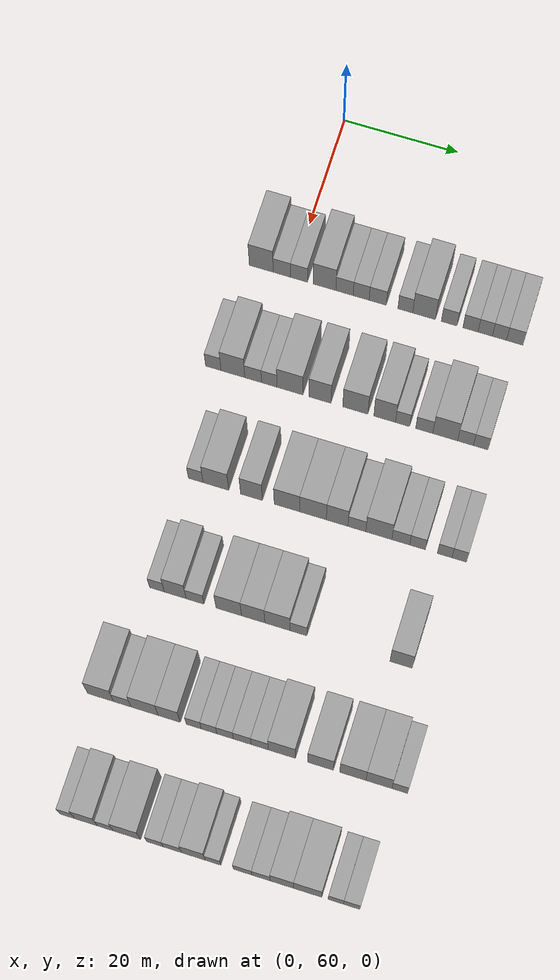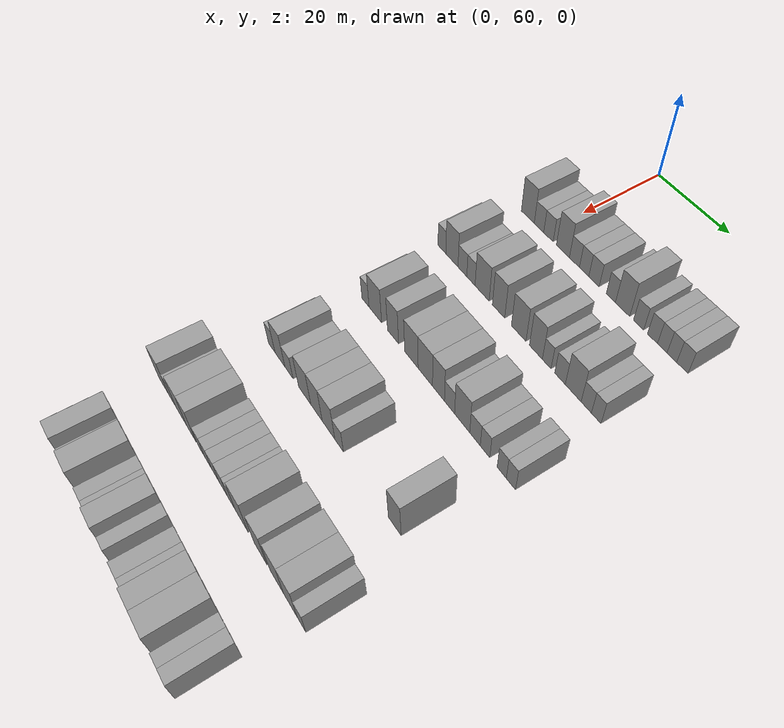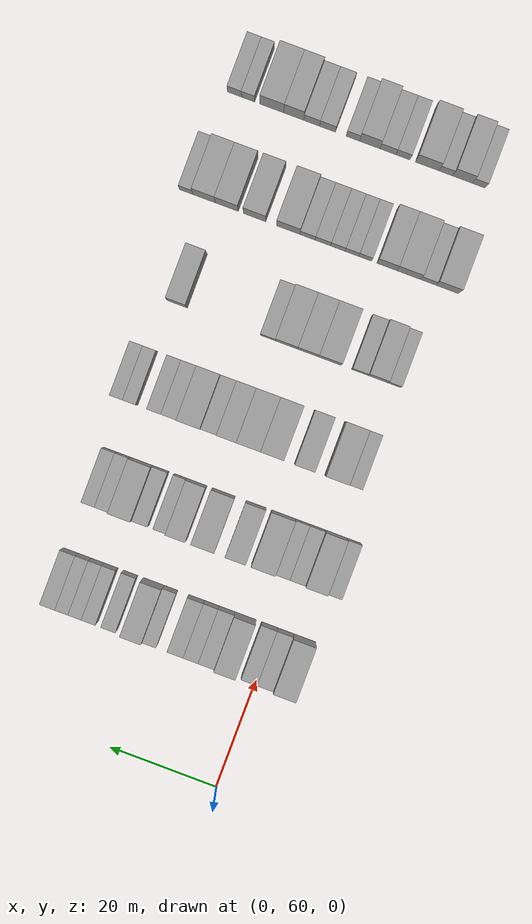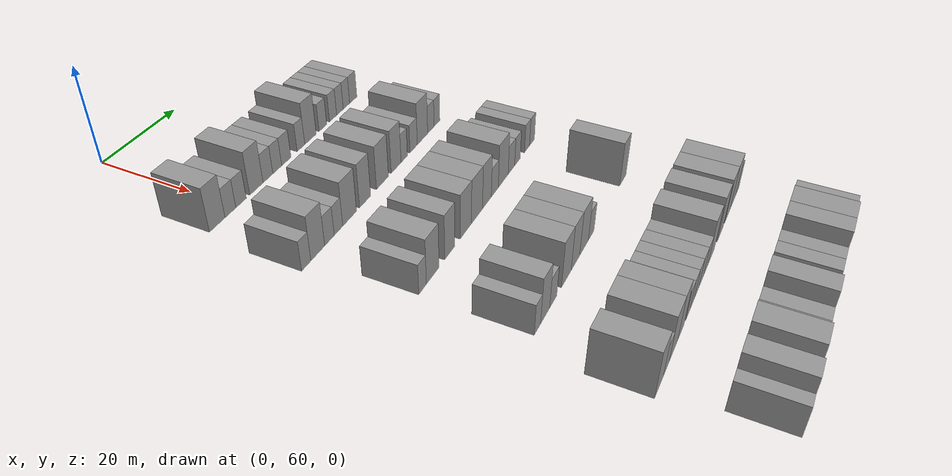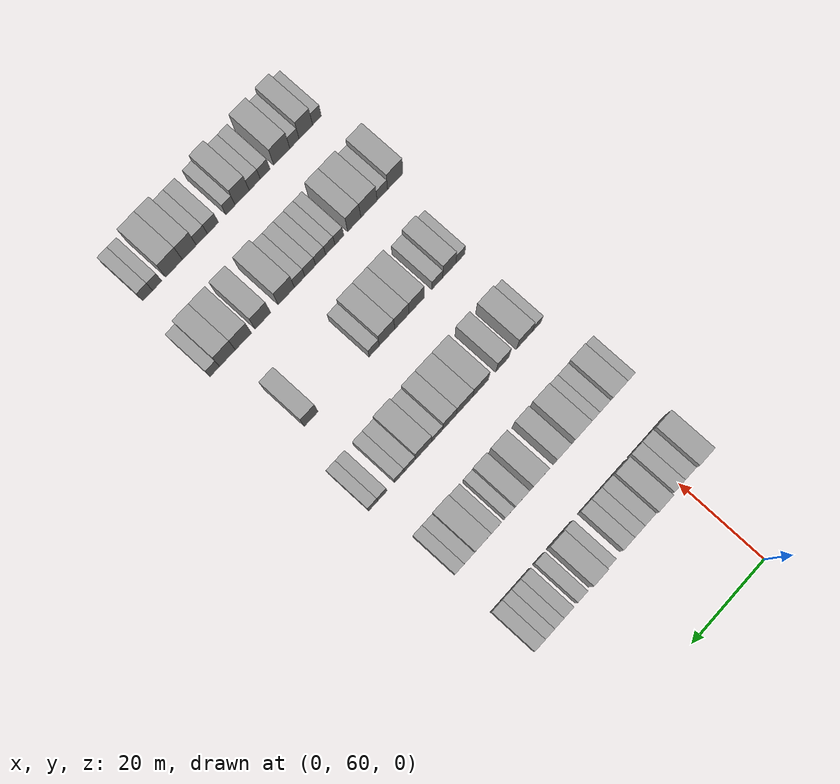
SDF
<sdf version="1.6">
 <world name="default">
  <model name="building_99">
   <static>1</static>
   <pose>25.0000 54.7364 0 0.000000 0.000000 0.000000</pose>
   <link name="link">
    <pose>0 0 4.50 0 0 0</pose>
    <collision name="collision"><geometry><box><size>10.0000 4.1685 9.0000</size></box></geometry></collision>
    <visual name="visual">
     <cast_shadows>0</cast_shadows>
     <geometry><box><size>10.0000 4.1685 9.0000</size></box></geometry>
     <material>
      <script>
       <uri>model://grey_wall/materials/scripts</uri>
       <uri>model://grey_wall/materials/textures</uri>
       <name>vrc/grey_wall</name>
      </script>
     </material>
    </visual>
   </link>
  </model>
  <model name="building_100">
   <static>1</static>
   <pose>25.0000 58.3189 0 0.000000 0.000000 0.000000</pose>
   <link name="link">
    <pose>0 0 3.00 0 0 0</pose>
    <collision name="collision"><geometry><box><size>10.0000 2.9965 6.0000</size></box></geometry></collision>
    <visual name="visual">
     <cast_shadows>0</cast_shadows>
     <geometry><box><size>10.0000 2.9965 6.0000</size></box></geometry>
     <material>
      <script>
       <uri>model://grey_wall/materials/scripts</uri>
       <uri>model://grey_wall/materials/textures</uri>
       <name>vrc/grey_wall</name>
      </script>
     </material>
    </visual>
   </link>
  </model>
  <model name="building_101">
   <static>1</static>
   <pose>25.0000 61.2905 0 0.000000 0.000000 0.000000</pose>
   <link name="link">
    <pose>0 0 3.00 0 0 0</pose>
    <collision name="collision"><geometry><box><size>10.0000 2.9468 6.0000</size></box></geometry></collision>
    <visual name="visual">
     <cast_shadows>0</cast_shadows>
     <geometry><box><size>10.0000 2.9468 6.0000</size></box></geometry>
     <material>
      <script>
       <uri>model://grey_wall/materials/scripts</uri>
       <uri>model://grey_wall/materials/textures</uri>
       <name>vrc/grey_wall</name>
      </script>
     </material>
    </visual>
   </link>
  </model>
  <model name="building_102">
   <static>1</static>
   <pose>25.0000 65.7381 0 0.000000 0.000000 0.000000</pose>
   <link name="link">
    <pose>0 0 4.50 0 0 0</pose>
    <collision name="collision"><geometry><box><size>10.0000 3.9484 9.0000</size></box></geometry></collision>
    <visual name="visual">
     <cast_shadows>0</cast_shadows>
     <geometry><box><size>10.0000 3.9484 9.0000</size></box></geometry>
     <material>
      <script>
       <uri>model://grey_wall/materials/scripts</uri>
       <uri>model://grey_wall/materials/textures</uri>
       <name>vrc/grey_wall</name>
      </script>
     </material>
    </visual>
   </link>
  </model>
  <model name="building_103">
   <static>1</static>
   <pose>25.0000 69.1969 0 0.000000 0.000000 0.000000</pose>
   <link name="link">
    <pose>0 0 3.00 0 0 0</pose>
    <collision name="collision"><geometry><box><size>10.0000 2.9692 6.0000</size></box></geometry></collision>
    <visual name="visual">
     <cast_shadows>0</cast_shadows>
     <geometry><box><size>10.0000 2.9692 6.0000</size></box></geometry>
     <material>
      <script>
       <uri>model://grey_wall/materials/scripts</uri>
       <uri>model://grey_wall/materials/textures</uri>
       <name>vrc/grey_wall</name>
      </script>
     </material>
    </visual>
   </link>
  </model>
  <model name="building_104">
   <static>1</static>
   <pose>25.0000 72.0563 0 0.000000 0.000000 0.000000</pose>
   <link name="link">
    <pose>0 0 3.00 0 0 0</pose>
    <collision name="collision"><geometry><box><size>10.0000 2.7497 6.0000</size></box></geometry></collision>
    <visual name="visual">
     <cast_shadows>0</cast_shadows>
     <geometry><box><size>10.0000 2.7497 6.0000</size></box></geometry>
     <material>
      <script>
       <uri>model://grey_wall/materials/scripts</uri>
       <uri>model://grey_wall/materials/textures</uri>
       <name>vrc/grey_wall</name>
      </script>
     </material>
    </visual>
   </link>
  </model>
  <model name="building_105">
   <static>1</static>
   <pose>25.0000 74.9197 0 0.000000 0.000000 0.000000</pose>
   <link name="link">
    <pose>0 0 3.00 0 0 0</pose>
    <collision name="collision"><geometry><box><size>10.0000 2.9771 6.0000</size></box></geometry></collision>
    <visual name="visual">
     <cast_shadows>0</cast_shadows>
     <geometry><box><size>10.0000 2.9771 6.0000</size></box></geometry>
     <material>
      <script>
       <uri>model://grey_wall/materials/scripts</uri>
       <uri>model://grey_wall/materials/textures</uri>
       <name>vrc/grey_wall</name>
      </script>
     </material>
    </visual>
   </link>
  </model>
  <model name="building_106">
   <static>1</static>
   <pose>25.0000 79.6851 0 0.000000 0.000000 0.000000</pose>
   <link name="link">
    <pose>0 0 3.00 0 0 0</pose>
    <collision name="collision"><geometry><box><size>10.0000 2.5538 6.0000</size></box></geometry></collision>
    <visual name="visual">
     <cast_shadows>0</cast_shadows>
     <geometry><box><size>10.0000 2.5538 6.0000</size></box></geometry>
     <material>
      <script>
       <uri>model://grey_wall/materials/scripts</uri>
       <uri>model://grey_wall/materials/textures</uri>
       <name>vrc/grey_wall</name>
      </script>
     </material>
    </visual>
   </link>
  </model>
  <model name="building_107">
   <static>1</static>
   <pose>25.0000 82.9162 0 0.000000 0.000000 0.000000</pose>
   <link name="link">
    <pose>0 0 4.50 0 0 0</pose>
    <collision name="collision"><geometry><box><size>10.0000 3.9083 9.0000</size></box></geometry></collision>
    <visual name="visual">
     <cast_shadows>0</cast_shadows>
     <geometry><box><size>10.0000 3.9083 9.0000</size></box></geometry>
     <material>
      <script>
       <uri>model://grey_wall/materials/scripts</uri>
       <uri>model://grey_wall/materials/textures</uri>
       <name>vrc/grey_wall</name>
      </script>
     </material>
    </visual>
   </link>
  </model>
  <model name="building_108">
   <static>1</static>
   <pose>25.0000 87.2199 0 0.000000 0.000000 0.000000</pose>
   <link name="link">
    <pose>0 0 3.00 0 0 0</pose>
    <collision name="collision"><geometry><box><size>10.0000 2.6990 6.0000</size></box></geometry></collision>
    <visual name="visual">
     <cast_shadows>0</cast_shadows>
     <geometry><box><size>10.0000 2.6990 6.0000</size></box></geometry>
     <material>
      <script>
       <uri>model://grey_wall/materials/scripts</uri>
       <uri>model://grey_wall/materials/textures</uri>
       <name>vrc/grey_wall</name>
      </script>
     </material>
    </visual>
   </link>
  </model>
  <model name="building_109">
   <static>1</static>
   <pose>25.0000 90.8690 0 0.000000 0.000000 0.000000</pose>
   <link name="link">
    <pose>0 0 3.00 0 0 0</pose>
    <collision name="collision"><geometry><box><size>10.0000 2.5992 6.0000</size></box></geometry></collision>
    <visual name="visual">
     <cast_shadows>0</cast_shadows>
     <geometry><box><size>10.0000 2.5992 6.0000</size></box></geometry>
     <material>
      <script>
       <uri>model://grey_wall/materials/scripts</uri>
       <uri>model://grey_wall/materials/textures</uri>
       <name>vrc/grey_wall</name>
      </script>
     </material>
    </visual>
   </link>
  </model>
  <model name="building_110">
   <static>1</static>
   <pose>25.0000 93.3935 0 0.000000 0.000000 0.000000</pose>
   <link name="link">
    <pose>0 0 3.00 0 0 0</pose>
    <collision name="collision"><geometry><box><size>10.0000 2.4498 6.0000</size></box></geometry></collision>
    <visual name="visual">
     <cast_shadows>0</cast_shadows>
     <geometry><box><size>10.0000 2.4498 6.0000</size></box></geometry>
     <material>
      <script>
       <uri>model://grey_wall/materials/scripts</uri>
       <uri>model://grey_wall/materials/textures</uri>
       <name>vrc/grey_wall</name>
      </script>
     </material>
    </visual>
   </link>
  </model>
  <model name="building_111">
   <static>1</static>
   <pose>25.0000 95.8264 0 0.000000 0.000000 0.000000</pose>
   <link name="link">
    <pose>0 0 3.00 0 0 0</pose>
    <collision name="collision"><geometry><box><size>10.0000 2.4160 6.0000</size></box></geometry></collision>
    <visual name="visual">
     <cast_shadows>0</cast_shadows>
     <geometry><box><size>10.0000 2.4160 6.0000</size></box></geometry>
     <material>
      <script>
       <uri>model://grey_wall/materials/scripts</uri>
       <uri>model://grey_wall/materials/textures</uri>
       <name>vrc/grey_wall</name>
      </script>
     </material>
    </visual>
   </link>
  </model>
  <model name="building_112">
   <static>1</static>
   <pose>25.0000 98.4387 0 0.000000 0.000000 0.000000</pose>
   <link name="link">
    <pose>0 0 3.00 0 0 0</pose>
    <collision name="collision"><geometry><box><size>10.0000 2.8087 6.0000</size></box></geometry></collision>
    <visual name="visual">
     <cast_shadows>0</cast_shadows>
     <geometry><box><size>10.0000 2.8087 6.0000</size></box></geometry>
     <material>
      <script>
       <uri>model://grey_wall/materials/scripts</uri>
       <uri>model://grey_wall/materials/textures</uri>
       <name>vrc/grey_wall</name>
      </script>
     </material>
    </visual>
   </link>
  </model>
  <model name="building_270">
   <static>1</static>
   <pose>44.0000 52.5815 0 0.000000 0.000000 0.000000</pose>
   <link name="link">
    <pose>0 0 3.00 0 0 0</pose>
    <collision name="collision"><geometry><box><size>10.0000 2.6448 6.0000</size></box></geometry></collision>
    <visual name="visual">
     <cast_shadows>0</cast_shadows>
     <geometry><box><size>10.0000 2.6448 6.0000</size></box></geometry>
     <material>
      <script>
       <uri>model://grey_wall/materials/scripts</uri>
       <uri>model://grey_wall/materials/textures</uri>
       <name>vrc/grey_wall</name>
      </script>
     </material>
    </visual>
   </link>
  </model>
  <model name="building_271">
   <static>1</static>
   <pose>44.0000 55.9416 0 0.000000 0.000000 0.000000</pose>
   <link name="link">
    <pose>0 0 4.50 0 0 0</pose>
    <collision name="collision"><geometry><box><size>10.0000 4.0754 9.0000</size></box></geometry></collision>
    <visual name="visual">
     <cast_shadows>0</cast_shadows>
     <geometry><box><size>10.0000 4.0754 9.0000</size></box></geometry>
     <material>
      <script>
       <uri>model://grey_wall/materials/scripts</uri>
       <uri>model://grey_wall/materials/textures</uri>
       <name>vrc/grey_wall</name>
      </script>
     </material>
    </visual>
   </link>
  </model>
  <model name="building_272">
   <static>1</static>
   <pose>44.0000 59.4231 0 0.000000 0.000000 0.000000</pose>
   <link name="link">
    <pose>0 0 3.00 0 0 0</pose>
    <collision name="collision"><geometry><box><size>10.0000 2.8878 6.0000</size></box></geometry></collision>
    <visual name="visual">
     <cast_shadows>0</cast_shadows>
     <geometry><box><size>10.0000 2.8878 6.0000</size></box></geometry>
     <material>
      <script>
       <uri>model://grey_wall/materials/scripts</uri>
       <uri>model://grey_wall/materials/textures</uri>
       <name>vrc/grey_wall</name>
      </script>
     </material>
    </visual>
   </link>
  </model>
  <model name="building_273">
   <static>1</static>
   <pose>44.0000 62.1952 0 0.000000 0.000000 0.000000</pose>
   <link name="link">
    <pose>0 0 3.00 0 0 0</pose>
    <collision name="collision"><geometry><box><size>10.0000 2.6564 6.0000</size></box></geometry></collision>
    <visual name="visual">
     <cast_shadows>0</cast_shadows>
     <geometry><box><size>10.0000 2.6564 6.0000</size></box></geometry>
     <material>
      <script>
       <uri>model://grey_wall/materials/scripts</uri>
       <uri>model://grey_wall/materials/textures</uri>
       <name>vrc/grey_wall</name>
      </script>
     </material>
    </visual>
   </link>
  </model>
  <model name="building_274">
   <static>1</static>
   <pose>44.0000 65.7457 0 0.000000 0.000000 0.000000</pose>
   <link name="link">
    <pose>0 0 4.50 0 0 0</pose>
    <collision name="collision"><geometry><box><size>10.0000 4.4445 9.0000</size></box></geometry></collision>
    <visual name="visual">
     <cast_shadows>0</cast_shadows>
     <geometry><box><size>10.0000 4.4445 9.0000</size></box></geometry>
     <material>
      <script>
       <uri>model://grey_wall/materials/scripts</uri>
       <uri>model://grey_wall/materials/textures</uri>
       <name>vrc/grey_wall</name>
      </script>
     </material>
    </visual>
   </link>
  </model>
  <model name="building_275">
   <static>1</static>
   <pose>44.0000 70.8506 0 0.000000 0.000000 0.000000</pose>
   <link name="link">
    <pose>0 0 4.50 0 0 0</pose>
    <collision name="collision"><geometry><box><size>10.0000 3.7655 9.0000</size></box></geometry></collision>
    <visual name="visual">
     <cast_shadows>0</cast_shadows>
     <geometry><box><size>10.0000 3.7655 9.0000</size></box></geometry>
     <material>
      <script>
       <uri>model://grey_wall/materials/scripts</uri>
       <uri>model://grey_wall/materials/textures</uri>
       <name>vrc/grey_wall</name>
      </script>
     </material>
    </visual>
   </link>
  </model>
  <model name="building_276">
   <static>1</static>
   <pose>44.0000 76.8749 0 0.000000 0.000000 0.000000</pose>
   <link name="link">
    <pose>0 0 4.50 0 0 0</pose>
    <collision name="collision"><geometry><box><size>10.0000 4.2829 9.0000</size></box></geometry></collision>
    <visual name="visual">
     <cast_shadows>0</cast_shadows>
     <geometry><box><size>10.0000 4.2829 9.0000</size></box></geometry>
     <material>
      <script>
       <uri>model://grey_wall/materials/scripts</uri>
       <uri>model://grey_wall/materials/textures</uri>
       <name>vrc/grey_wall</name>
      </script>
     </material>
    </visual>
   </link>
  </model>
  <model name="building_277">
   <static>1</static>
   <pose>44.0000 81.8533 0 0.000000 0.000000 0.000000</pose>
   <link name="link">
    <pose>0 0 4.50 0 0 0</pose>
    <collision name="collision"><geometry><box><size>10.0000 3.6740 9.0000</size></box></geometry></collision>
    <visual name="visual">
     <cast_shadows>0</cast_shadows>
     <geometry><box><size>10.0000 3.6740 9.0000</size></box></geometry>
     <material>
      <script>
       <uri>model://grey_wall/materials/scripts</uri>
       <uri>model://grey_wall/materials/textures</uri>
       <name>vrc/grey_wall</name>
      </script>
     </material>
    </visual>
   </link>
  </model>
  <model name="building_278">
   <static>1</static>
   <pose>44.0000 84.8981 0 0.000000 0.000000 0.000000</pose>
   <link name="link">
    <pose>0 0 3.00 0 0 0</pose>
    <collision name="collision"><geometry><box><size>10.0000 2.4155 6.0000</size></box></geometry></collision>
    <visual name="visual">
     <cast_shadows>0</cast_shadows>
     <geometry><box><size>10.0000 2.4155 6.0000</size></box></geometry>
     <material>
      <script>
       <uri>model://grey_wall/materials/scripts</uri>
       <uri>model://grey_wall/materials/textures</uri>
       <name>vrc/grey_wall</name>
      </script>
     </material>
    </visual>
   </link>
  </model>
  <model name="building_279">
   <static>1</static>
   <pose>44.0000 88.5542 0 0.000000 0.000000 0.000000</pose>
   <link name="link">
    <pose>0 0 3.00 0 0 0</pose>
    <collision name="collision"><geometry><box><size>10.0000 2.8967 6.0000</size></box></geometry></collision>
    <visual name="visual">
     <cast_shadows>0</cast_shadows>
     <geometry><box><size>10.0000 2.8967 6.0000</size></box></geometry>
     <material>
      <script>
       <uri>model://grey_wall/materials/scripts</uri>
       <uri>model://grey_wall/materials/textures</uri>
       <name>vrc/grey_wall</name>
      </script>
     </material>
    </visual>
   </link>
  </model>
  <model name="building_280">
   <static>1</static>
   <pose>44.0000 92.1007 0 0.000000 0.000000 0.000000</pose>
   <link name="link">
    <pose>0 0 4.50 0 0 0</pose>
    <collision name="collision"><geometry><box><size>10.0000 4.1963 9.0000</size></box></geometry></collision>
    <visual name="visual">
     <cast_shadows>0</cast_shadows>
     <geometry><box><size>10.0000 4.1963 9.0000</size></box></geometry>
     <material>
      <script>
       <uri>model://grey_wall/materials/scripts</uri>
       <uri>model://grey_wall/materials/textures</uri>
       <name>vrc/grey_wall</name>
      </script>
     </material>
    </visual>
   </link>
  </model>
  <model name="building_281">
   <static>1</static>
   <pose>44.0000 95.5311 0 0.000000 0.000000 0.000000</pose>
   <link name="link">
    <pose>0 0 3.00 0 0 0</pose>
    <collision name="collision"><geometry><box><size>10.0000 2.6646 6.0000</size></box></geometry></collision>
    <visual name="visual">
     <cast_shadows>0</cast_shadows>
     <geometry><box><size>10.0000 2.6646 6.0000</size></box></geometry>
     <material>
      <script>
       <uri>model://grey_wall/materials/scripts</uri>
       <uri>model://grey_wall/materials/textures</uri>
       <name>vrc/grey_wall</name>
      </script>
     </material>
    </visual>
   </link>
  </model>
  <model name="building_282">
   <static>1</static>
   <pose>44.0000 98.0911 0 0.000000 0.000000 0.000000</pose>
   <link name="link">
    <pose>0 0 3.00 0 0 0</pose>
    <collision name="collision"><geometry><box><size>10.0000 2.4554 6.0000</size></box></geometry></collision>
    <visual name="visual">
     <cast_shadows>0</cast_shadows>
     <geometry><box><size>10.0000 2.4554 6.0000</size></box></geometry>
     <material>
      <script>
       <uri>model://grey_wall/materials/scripts</uri>
       <uri>model://grey_wall/materials/textures</uri>
       <name>vrc/grey_wall</name>
      </script>
     </material>
    </visual>
   </link>
  </model>
  <model name="building_451">
   <static>1</static>
   <pose>63.0000 55.8074 0 0.000000 0.000000 0.000000</pose>
   <link name="link">
    <pose>0 0 3.00 0 0 0</pose>
    <collision name="collision"><geometry><box><size>10.0000 2.5078 6.0000</size></box></geometry></collision>
    <visual name="visual">
     <cast_shadows>0</cast_shadows>
     <geometry><box><size>10.0000 2.5078 6.0000</size></box></geometry>
     <material>
      <script>
       <uri>model://grey_wall/materials/scripts</uri>
       <uri>model://grey_wall/materials/textures</uri>
       <name>vrc/grey_wall</name>
      </script>
     </material>
    </visual>
   </link>
  </model>
  <model name="building_452">
   <static>1</static>
   <pose>63.0000 59.2309 0 0.000000 0.000000 0.000000</pose>
   <link name="link">
    <pose>0 0 4.50 0 0 0</pose>
    <collision name="collision"><geometry><box><size>10.0000 4.3391 9.0000</size></box></geometry></collision>
    <visual name="visual">
     <cast_shadows>0</cast_shadows>
     <geometry><box><size>10.0000 4.3391 9.0000</size></box></geometry>
     <material>
      <script>
       <uri>model://grey_wall/materials/scripts</uri>
       <uri>model://grey_wall/materials/textures</uri>
       <name>vrc/grey_wall</name>
      </script>
     </material>
    </visual>
   </link>
  </model>
  <model name="building_453">
   <static>1</static>
   <pose>63.0000 65.2403 0 0.000000 0.000000 0.000000</pose>
   <link name="link">
    <pose>0 0 4.50 0 0 0</pose>
    <collision name="collision"><geometry><box><size>10.0000 3.6797 9.0000</size></box></geometry></collision>
    <visual name="visual">
     <cast_shadows>0</cast_shadows>
     <geometry><box><size>10.0000 3.6797 9.0000</size></box></geometry>
     <material>
      <script>
       <uri>model://grey_wall/materials/scripts</uri>
       <uri>model://grey_wall/materials/textures</uri>
       <name>vrc/grey_wall</name>
      </script>
     </material>
    </visual>
   </link>
  </model>
  <model name="building_454">
   <static>1</static>
   <pose>63.0000 71.2263 0 0.000000 0.000000 0.000000</pose>
   <link name="link">
    <pose>0 0 4.50 0 0 0</pose>
    <collision name="collision"><geometry><box><size>10.0000 4.2923 9.0000</size></box></geometry></collision>
    <visual name="visual">
     <cast_shadows>0</cast_shadows>
     <geometry><box><size>10.0000 4.2923 9.0000</size></box></geometry>
     <material>
      <script>
       <uri>model://grey_wall/materials/scripts</uri>
       <uri>model://grey_wall/materials/textures</uri>
       <name>vrc/grey_wall</name>
      </script>
     </material>
    </visual>
   </link>
  </model>
  <model name="building_455">
   <static>1</static>
   <pose>63.0000 75.6053 0 0.000000 0.000000 0.000000</pose>
   <link name="link">
    <pose>0 0 4.50 0 0 0</pose>
    <collision name="collision"><geometry><box><size>10.0000 4.4658 9.0000</size></box></geometry></collision>
    <visual name="visual">
     <cast_shadows>0</cast_shadows>
     <geometry><box><size>10.0000 4.4658 9.0000</size></box></geometry>
     <material>
      <script>
       <uri>model://grey_wall/materials/scripts</uri>
       <uri>model://grey_wall/materials/textures</uri>
       <name>vrc/grey_wall</name>
      </script>
     </material>
    </visual>
   </link>
  </model>
  <model name="building_456">
   <static>1</static>
   <pose>63.0000 79.6479 0 0.000000 0.000000 0.000000</pose>
   <link name="link">
    <pose>0 0 4.50 0 0 0</pose>
    <collision name="collision"><geometry><box><size>10.0000 3.6194 9.0000</size></box></geometry></collision>
    <visual name="visual">
     <cast_shadows>0</cast_shadows>
     <geometry><box><size>10.0000 3.6194 9.0000</size></box></geometry>
     <material>
      <script>
       <uri>model://grey_wall/materials/scripts</uri>
       <uri>model://grey_wall/materials/textures</uri>
       <name>vrc/grey_wall</name>
      </script>
     </material>
    </visual>
   </link>
  </model>
  <model name="building_457">
   <static>1</static>
   <pose>63.0000 82.9490 0 0.000000 0.000000 0.000000</pose>
   <link name="link">
    <pose>0 0 3.00 0 0 0</pose>
    <collision name="collision"><geometry><box><size>10.0000 2.9828 6.0000</size></box></geometry></collision>
    <visual name="visual">
     <cast_shadows>0</cast_shadows>
     <geometry><box><size>10.0000 2.9828 6.0000</size></box></geometry>
     <material>
      <script>
       <uri>model://grey_wall/materials/scripts</uri>
       <uri>model://grey_wall/materials/textures</uri>
       <name>vrc/grey_wall</name>
      </script>
     </material>
    </visual>
   </link>
  </model>
  <model name="building_458">
   <static>1</static>
   <pose>63.0000 86.6181 0 0.000000 0.000000 0.000000</pose>
   <link name="link">
    <pose>0 0 4.50 0 0 0</pose>
    <collision name="collision"><geometry><box><size>10.0000 4.3553 9.0000</size></box></geometry></collision>
    <visual name="visual">
     <cast_shadows>0</cast_shadows>
     <geometry><box><size>10.0000 4.3553 9.0000</size></box></geometry>
     <material>
      <script>
       <uri>model://grey_wall/materials/scripts</uri>
       <uri>model://grey_wall/materials/textures</uri>
       <name>vrc/grey_wall</name>
      </script>
     </material>
    </visual>
   </link>
  </model>
  <model name="building_459">
   <static>1</static>
   <pose>63.0000 90.2735 0 0.000000 0.000000 0.000000</pose>
   <link name="link">
    <pose>0 0 3.00 0 0 0</pose>
    <collision name="collision"><geometry><box><size>10.0000 2.9556 6.0000</size></box></geometry></collision>
    <visual name="visual">
     <cast_shadows>0</cast_shadows>
     <geometry><box><size>10.0000 2.9556 6.0000</size></box></geometry>
     <material>
      <script>
       <uri>model://grey_wall/materials/scripts</uri>
       <uri>model://grey_wall/materials/textures</uri>
       <name>vrc/grey_wall</name>
      </script>
     </material>
    </visual>
   </link>
  </model>
  <model name="building_460">
   <static>1</static>
   <pose>63.0000 93.0572 0 0.000000 0.000000 0.000000</pose>
   <link name="link">
    <pose>0 0 3.00 0 0 0</pose>
    <collision name="collision"><geometry><box><size>10.0000 2.6119 6.0000</size></box></geometry></collision>
    <visual name="visual">
     <cast_shadows>0</cast_shadows>
     <geometry><box><size>10.0000 2.6119 6.0000</size></box></geometry>
     <material>
      <script>
       <uri>model://grey_wall/materials/scripts</uri>
       <uri>model://grey_wall/materials/textures</uri>
       <name>vrc/grey_wall</name>
      </script>
     </material>
    </visual>
   </link>
  </model>
  <model name="building_461">
   <static>1</static>
   <pose>63.0000 97.5764 0 0.000000 0.000000 0.000000</pose>
   <link name="link">
    <pose>0 0 3.00 0 0 0</pose>
    <collision name="collision"><geometry><box><size>10.0000 2.4265 6.0000</size></box></geometry></collision>
    <visual name="visual">
     <cast_shadows>0</cast_shadows>
     <geometry><box><size>10.0000 2.4265 6.0000</size></box></geometry>
     <material>
      <script>
       <uri>model://grey_wall/materials/scripts</uri>
       <uri>model://grey_wall/materials/textures</uri>
       <name>vrc/grey_wall</name>
      </script>
     </material>
    </visual>
   </link>
  </model>
  <model name="building_462">
   <static>1</static>
   <pose>63.0000 99.9962 0 0.000000 0.000000 0.000000</pose>
   <link name="link">
    <pose>0 0 3.00 0 0 0</pose>
    <collision name="collision"><geometry><box><size>10.0000 2.4131 6.0000</size></box></geometry></collision>
    <visual name="visual">
     <cast_shadows>0</cast_shadows>
     <geometry><box><size>10.0000 2.4131 6.0000</size></box></geometry>
     <material>
      <script>
       <uri>model://grey_wall/materials/scripts</uri>
       <uri>model://grey_wall/materials/textures</uri>
       <name>vrc/grey_wall</name>
      </script>
     </material>
    </visual>
   </link>
  </model>
  <model name="building_615">
   <static>1</static>
   <pose>82.0000 55.6038 0 0.000000 0.000000 0.000000</pose>
   <link name="link">
    <pose>0 0 3.00 0 0 0</pose>
    <collision name="collision"><geometry><box><size>10.0000 2.4736 6.0000</size></box></geometry></collision>
    <visual name="visual">
     <cast_shadows>0</cast_shadows>
     <geometry><box><size>10.0000 2.4736 6.0000</size></box></geometry>
     <material>
      <script>
       <uri>model://grey_wall/materials/scripts</uri>
       <uri>model://grey_wall/materials/textures</uri>
       <name>vrc/grey_wall</name>
      </script>
     </material>
    </visual>
   </link>
  </model>
  <model name="building_616">
   <static>1</static>
   <pose>82.0000 58.6643 0 0.000000 0.000000 0.000000</pose>
   <link name="link">
    <pose>0 0 4.50 0 0 0</pose>
    <collision name="collision"><geometry><box><size>10.0000 3.6474 9.0000</size></box></geometry></collision>
    <visual name="visual">
     <cast_shadows>0</cast_shadows>
     <geometry><box><size>10.0000 3.6474 9.0000</size></box></geometry>
     <material>
      <script>
       <uri>model://grey_wall/materials/scripts</uri>
       <uri>model://grey_wall/materials/textures</uri>
       <name>vrc/grey_wall</name>
      </script>
     </material>
    </visual>
   </link>
  </model>
  <model name="building_617">
   <static>1</static>
   <pose>82.0000 61.9723 0 0.000000 0.000000 0.000000</pose>
   <link name="link">
    <pose>0 0 3.00 0 0 0</pose>
    <collision name="collision"><geometry><box><size>10.0000 2.9686 6.0000</size></box></geometry></collision>
    <visual name="visual">
     <cast_shadows>0</cast_shadows>
     <geometry><box><size>10.0000 2.9686 6.0000</size></box></geometry>
     <material>
      <script>
       <uri>model://grey_wall/materials/scripts</uri>
       <uri>model://grey_wall/materials/textures</uri>
       <name>vrc/grey_wall</name>
      </script>
     </material>
    </visual>
   </link>
  </model>
  <model name="building_618">
   <static>1</static>
   <pose>82.0000 67.5779 0 0.000000 0.000000 0.000000</pose>
   <link name="link">
    <pose>0 0 4.50 0 0 0</pose>
    <collision name="collision"><geometry><box><size>10.0000 4.2428 9.0000</size></box></geometry></collision>
    <visual name="visual">
     <cast_shadows>0</cast_shadows>
     <geometry><box><size>10.0000 4.2428 9.0000</size></box></geometry>
     <material>
      <script>
       <uri>model://grey_wall/materials/scripts</uri>
       <uri>model://grey_wall/materials/textures</uri>
       <name>vrc/grey_wall</name>
      </script>
     </material>
    </visual>
   </link>
  </model>
  <model name="building_619">
   <static>1</static>
   <pose>82.0000 71.6418 0 0.000000 0.000000 0.000000</pose>
   <link name="link">
    <pose>0 0 4.50 0 0 0</pose>
    <collision name="collision"><geometry><box><size>10.0000 3.8849 9.0000</size></box></geometry></collision>
    <visual name="visual">
     <cast_shadows>0</cast_shadows>
     <geometry><box><size>10.0000 3.8849 9.0000</size></box></geometry>
     <material>
      <script>
       <uri>model://grey_wall/materials/scripts</uri>
       <uri>model://grey_wall/materials/textures</uri>
       <name>vrc/grey_wall</name>
      </script>
     </material>
    </visual>
   </link>
  </model>
  <model name="building_620">
   <static>1</static>
   <pose>82.0000 75.6646 0 0.000000 0.000000 0.000000</pose>
   <link name="link">
    <pose>0 0 4.50 0 0 0</pose>
    <collision name="collision"><geometry><box><size>10.0000 4.1608 9.0000</size></box></geometry></collision>
    <visual name="visual">
     <cast_shadows>0</cast_shadows>
     <geometry><box><size>10.0000 4.1608 9.0000</size></box></geometry>
     <material>
      <script>
       <uri>model://grey_wall/materials/scripts</uri>
       <uri>model://grey_wall/materials/textures</uri>
       <name>vrc/grey_wall</name>
      </script>
     </material>
    </visual>
   </link>
  </model>
  <model name="building_621">
   <static>1</static>
   <pose>82.0000 79.1383 0 0.000000 0.000000 0.000000</pose>
   <link name="link">
    <pose>0 0 3.00 0 0 0</pose>
    <collision name="collision"><geometry><box><size>10.0000 2.7865 6.0000</size></box></geometry></collision>
    <visual name="visual">
     <cast_shadows>0</cast_shadows>
     <geometry><box><size>10.0000 2.7865 6.0000</size></box></geometry>
     <material>
      <script>
       <uri>model://grey_wall/materials/scripts</uri>
       <uri>model://grey_wall/materials/textures</uri>
       <name>vrc/grey_wall</name>
      </script>
     </material>
    </visual>
   </link>
  </model>
  <model name="building_622">
   <static>1</static>
   <pose>82.0000 96.0127 0 0.000000 0.000000 0.000000</pose>
   <link name="link">
    <pose>0 0 4.50 0 0 0</pose>
    <collision name="collision"><geometry><box><size>10.0000 3.6541 9.0000</size></box></geometry></collision>
    <visual name="visual">
     <cast_shadows>0</cast_shadows>
     <geometry><box><size>10.0000 3.6541 9.0000</size></box></geometry>
     <material>
      <script>
       <uri>model://grey_wall/materials/scripts</uri>
       <uri>model://grey_wall/materials/textures</uri>
       <name>vrc/grey_wall</name>
      </script>
     </material>
    </visual>
   </link>
  </model>
  <model name="building_792">
   <static>1</static>
   <pose>101.0000 52.7165 0 0.000000 0.000000 0.000000</pose>
   <link name="link">
    <pose>0 0 4.50 0 0 0</pose>
    <collision name="collision"><geometry><box><size>10.0000 4.2675 9.0000</size></box></geometry></collision>
    <visual name="visual">
     <cast_shadows>0</cast_shadows>
     <geometry><box><size>10.0000 4.2675 9.0000</size></box></geometry>
     <material>
      <script>
       <uri>model://grey_wall/materials/scripts</uri>
       <uri>model://grey_wall/materials/textures</uri>
       <name>vrc/grey_wall</name>
      </script>
     </material>
    </visual>
   </link>
  </model>
  <model name="building_793">
   <static>1</static>
   <pose>101.0000 56.2872 0 0.000000 0.000000 0.000000</pose>
   <link name="link">
    <pose>0 0 3.00 0 0 0</pose>
    <collision name="collision"><geometry><box><size>10.0000 2.8739 6.0000</size></box></geometry></collision>
    <visual name="visual">
     <cast_shadows>0</cast_shadows>
     <geometry><box><size>10.0000 2.8739 6.0000</size></box></geometry>
     <material>
      <script>
       <uri>model://grey_wall/materials/scripts</uri>
       <uri>model://grey_wall/materials/textures</uri>
       <name>vrc/grey_wall</name>
      </script>
     </material>
    </visual>
   </link>
  </model>
  <model name="building_794">
   <static>1</static>
   <pose>101.0000 59.9628 0 0.000000 0.000000 0.000000</pose>
   <link name="link">
    <pose>0 0 4.50 0 0 0</pose>
    <collision name="collision"><geometry><box><size>10.0000 4.4774 9.0000</size></box></geometry></collision>
    <visual name="visual">
     <cast_shadows>0</cast_shadows>
     <geometry><box><size>10.0000 4.4774 9.0000</size></box></geometry>
     <material>
      <script>
       <uri>model://grey_wall/materials/scripts</uri>
       <uri>model://grey_wall/materials/textures</uri>
       <name>vrc/grey_wall</name>
      </script>
     </material>
    </visual>
   </link>
  </model>
  <model name="building_795">
   <static>1</static>
   <pose>101.0000 64.0143 0 0.000000 0.000000 0.000000</pose>
   <link name="link">
    <pose>0 0 4.50 0 0 0</pose>
    <collision name="collision"><geometry><box><size>10.0000 3.6256 9.0000</size></box></geometry></collision>
    <visual name="visual">
     <cast_shadows>0</cast_shadows>
     <geometry><box><size>10.0000 3.6256 9.0000</size></box></geometry>
     <material>
      <script>
       <uri>model://grey_wall/materials/scripts</uri>
       <uri>model://grey_wall/materials/textures</uri>
       <name>vrc/grey_wall</name>
      </script>
     </material>
    </visual>
   </link>
  </model>
  <model name="building_796">
   <static>1</static>
   <pose>101.0000 68.0453 0 0.000000 0.000000 0.000000</pose>
   <link name="link">
    <pose>0 0 3.00 0 0 0</pose>
    <collision name="collision"><geometry><box><size>10.0000 2.4365 6.0000</size></box></geometry></collision>
    <visual name="visual">
     <cast_shadows>0</cast_shadows>
     <geometry><box><size>10.0000 2.4365 6.0000</size></box></geometry>
     <material>
      <script>
       <uri>model://grey_wall/materials/scripts</uri>
       <uri>model://grey_wall/materials/textures</uri>
       <name>vrc/grey_wall</name>
      </script>
     </material>
    </visual>
   </link>
  </model>
  <model name="building_797">
   <static>1</static>
   <pose>101.0000 70.5417 0 0.000000 0.000000 0.000000</pose>
   <link name="link">
    <pose>0 0 3.00 0 0 0</pose>
    <collision name="collision"><geometry><box><size>10.0000 2.5562 6.0000</size></box></geometry></collision>
    <visual name="visual">
     <cast_shadows>0</cast_shadows>
     <geometry><box><size>10.0000 2.5562 6.0000</size></box></geometry>
     <material>
      <script>
       <uri>model://grey_wall/materials/scripts</uri>
       <uri>model://grey_wall/materials/textures</uri>
       <name>vrc/grey_wall</name>
      </script>
     </material>
    </visual>
   </link>
  </model>
  <model name="building_798">
   <static>1</static>
   <pose>101.0000 73.1687 0 0.000000 0.000000 0.000000</pose>
   <link name="link">
    <pose>0 0 3.00 0 0 0</pose>
    <collision name="collision"><geometry><box><size>10.0000 2.6980 6.0000</size></box></geometry></collision>
    <visual name="visual">
     <cast_shadows>0</cast_shadows>
     <geometry><box><size>10.0000 2.6980 6.0000</size></box></geometry>
     <material>
      <script>
       <uri>model://grey_wall/materials/scripts</uri>
       <uri>model://grey_wall/materials/textures</uri>
       <name>vrc/grey_wall</name>
      </script>
     </material>
    </visual>
   </link>
  </model>
  <model name="building_799">
   <static>1</static>
   <pose>101.0000 75.9701 0 0.000000 0.000000 0.000000</pose>
   <link name="link">
    <pose>0 0 3.00 0 0 0</pose>
    <collision name="collision"><geometry><box><size>10.0000 2.9047 6.0000</size></box></geometry></collision>
    <visual name="visual">
     <cast_shadows>0</cast_shadows>
     <geometry><box><size>10.0000 2.9047 6.0000</size></box></geometry>
     <material>
      <script>
       <uri>model://grey_wall/materials/scripts</uri>
       <uri>model://grey_wall/materials/textures</uri>
       <name>vrc/grey_wall</name>
      </script>
     </material>
    </visual>
   </link>
  </model>
  <model name="building_800">
   <static>1</static>
   <pose>101.0000 78.8299 0 0.000000 0.000000 0.000000</pose>
   <link name="link">
    <pose>0 0 3.00 0 0 0</pose>
    <collision name="collision"><geometry><box><size>10.0000 2.8150 6.0000</size></box></geometry></collision>
    <visual name="visual">
     <cast_shadows>0</cast_shadows>
     <geometry><box><size>10.0000 2.8150 6.0000</size></box></geometry>
     <material>
      <script>
       <uri>model://grey_wall/materials/scripts</uri>
       <uri>model://grey_wall/materials/textures</uri>
       <name>vrc/grey_wall</name>
      </script>
     </material>
    </visual>
   </link>
  </model>
  <model name="building_801">
   <static>1</static>
   <pose>101.0000 82.4284 0 0.000000 0.000000 0.000000</pose>
   <link name="link">
    <pose>0 0 4.50 0 0 0</pose>
    <collision name="collision"><geometry><box><size>10.0000 4.3820 9.0000</size></box></geometry></collision>
    <visual name="visual">
     <cast_shadows>0</cast_shadows>
     <geometry><box><size>10.0000 4.3820 9.0000</size></box></geometry>
     <material>
      <script>
       <uri>model://grey_wall/materials/scripts</uri>
       <uri>model://grey_wall/materials/textures</uri>
       <name>vrc/grey_wall</name>
      </script>
     </material>
    </visual>
   </link>
  </model>
  <model name="building_802">
   <static>1</static>
   <pose>101.0000 88.6964 0 0.000000 0.000000 0.000000</pose>
   <link name="link">
    <pose>0 0 4.50 0 0 0</pose>
    <collision name="collision"><geometry><box><size>10.0000 4.1540 9.0000</size></box></geometry></collision>
    <visual name="visual">
     <cast_shadows>0</cast_shadows>
     <geometry><box><size>10.0000 4.1540 9.0000</size></box></geometry>
     <material>
      <script>
       <uri>model://grey_wall/materials/scripts</uri>
       <uri>model://grey_wall/materials/textures</uri>
       <name>vrc/grey_wall</name>
      </script>
     </material>
    </visual>
   </link>
  </model>
  <model name="building_803">
   <static>1</static>
   <pose>101.0000 93.8994 0 0.000000 0.000000 0.000000</pose>
   <link name="link">
    <pose>0 0 4.50 0 0 0</pose>
    <collision name="collision"><geometry><box><size>10.0000 4.2519 9.0000</size></box></geometry></collision>
    <visual name="visual">
     <cast_shadows>0</cast_shadows>
     <geometry><box><size>10.0000 4.2519 9.0000</size></box></geometry>
     <material>
      <script>
       <uri>model://grey_wall/materials/scripts</uri>
       <uri>model://grey_wall/materials/textures</uri>
       <name>vrc/grey_wall</name>
      </script>
     </material>
    </visual>
   </link>
  </model>
  <model name="building_804">
   <static>1</static>
   <pose>101.0000 98.1186 0 0.000000 0.000000 0.000000</pose>
   <link name="link">
    <pose>0 0 4.50 0 0 0</pose>
    <collision name="collision"><geometry><box><size>10.0000 4.1866 9.0000</size></box></geometry></collision>
    <visual name="visual">
     <cast_shadows>0</cast_shadows>
     <geometry><box><size>10.0000 4.1866 9.0000</size></box></geometry>
     <material>
      <script>
       <uri>model://grey_wall/materials/scripts</uri>
       <uri>model://grey_wall/materials/textures</uri>
       <name>vrc/grey_wall</name>
      </script>
     </material>
    </visual>
   </link>
  </model>
  <model name="building_805">
   <static>1</static>
   <pose>101.0000 101.4747 0 0.000000 0.000000 0.000000</pose>
   <link name="link">
    <pose>0 0 3.00 0 0 0</pose>
    <collision name="collision"><geometry><box><size>10.0000 2.5256 6.0000</size></box></geometry></collision>
    <visual name="visual">
     <cast_shadows>0</cast_shadows>
     <geometry><box><size>10.0000 2.5256 6.0000</size></box></geometry>
     <material>
      <script>
       <uri>model://grey_wall/materials/scripts</uri>
       <uri>model://grey_wall/materials/textures</uri>
       <name>vrc/grey_wall</name>
      </script>
     </material>
    </visual>
   </link>
  </model>
  <model name="building_964">
   <static>1</static>
   <pose>120.0000 53.8532 0 0.000000 0.000000 0.000000</pose>
   <link name="link">
    <pose>0 0 3.00 0 0 0</pose>
    <collision name="collision"><geometry><box><size>10.0000 2.4303 6.0000</size></box></geometry></collision>
    <visual name="visual">
     <cast_shadows>0</cast_shadows>
     <geometry><box><size>10.0000 2.4303 6.0000</size></box></geometry>
     <material>
      <script>
       <uri>model://grey_wall/materials/scripts</uri>
       <uri>model://grey_wall/materials/textures</uri>
       <name>vrc/grey_wall</name>
      </script>
     </material>
    </visual>
   </link>
  </model>
  <model name="building_965">
   <static>1</static>
   <pose>120.0000 56.9194 0 0.000000 0.000000 0.000000</pose>
   <link name="link">
    <pose>0 0 4.50 0 0 0</pose>
    <collision name="collision"><geometry><box><size>10.0000 3.7022 9.0000</size></box></geometry></collision>
    <visual name="visual">
     <cast_shadows>0</cast_shadows>
     <geometry><box><size>10.0000 3.7022 9.0000</size></box></geometry>
     <material>
      <script>
       <uri>model://grey_wall/materials/scripts</uri>
       <uri>model://grey_wall/materials/textures</uri>
       <name>vrc/grey_wall</name>
      </script>
     </material>
    </visual>
   </link>
  </model>
  <model name="building_966">
   <static>1</static>
   <pose>120.0000 60.0456 0 0.000000 0.000000 0.000000</pose>
   <link name="link">
    <pose>0 0 3.00 0 0 0</pose>
    <collision name="collision"><geometry><box><size>10.0000 2.5502 6.0000</size></box></geometry></collision>
    <visual name="visual">
     <cast_shadows>0</cast_shadows>
     <geometry><box><size>10.0000 2.5502 6.0000</size></box></geometry>
     <material>
      <script>
       <uri>model://grey_wall/materials/scripts</uri>
       <uri>model://grey_wall/materials/textures</uri>
       <name>vrc/grey_wall</name>
      </script>
     </material>
    </visual>
   </link>
  </model>
  <model name="building_967">
   <static>1</static>
   <pose>120.0000 63.5196 0 0.000000 0.000000 0.000000</pose>
   <link name="link">
    <pose>0 0 4.50 0 0 0</pose>
    <collision name="collision"><geometry><box><size>10.0000 4.3979 9.0000</size></box></geometry></collision>
    <visual name="visual">
     <cast_shadows>0</cast_shadows>
     <geometry><box><size>10.0000 4.3979 9.0000</size></box></geometry>
     <material>
      <script>
       <uri>model://grey_wall/materials/scripts</uri>
       <uri>model://grey_wall/materials/textures</uri>
       <name>vrc/grey_wall</name>
      </script>
     </material>
    </visual>
   </link>
  </model>
  <model name="building_968">
   <static>1</static>
   <pose>120.0000 68.0454 0 0.000000 0.000000 0.000000</pose>
   <link name="link">
    <pose>0 0 3.00 0 0 0</pose>
    <collision name="collision"><geometry><box><size>10.0000 2.6536 6.0000</size></box></geometry></collision>
    <visual name="visual">
     <cast_shadows>0</cast_shadows>
     <geometry><box><size>10.0000 2.6536 6.0000</size></box></geometry>
     <material>
      <script>
       <uri>model://grey_wall/materials/scripts</uri>
       <uri>model://grey_wall/materials/textures</uri>
       <name>vrc/grey_wall</name>
      </script>
     </material>
    </visual>
   </link>
  </model>
  <model name="building_969">
   <static>1</static>
   <pose>120.0000 70.8702 0 0.000000 0.000000 0.000000</pose>
   <link name="link">
    <pose>0 0 3.00 0 0 0</pose>
    <collision name="collision"><geometry><box><size>10.0000 2.9961 6.0000</size></box></geometry></collision>
    <visual name="visual">
     <cast_shadows>0</cast_shadows>
     <geometry><box><size>10.0000 2.9961 6.0000</size></box></geometry>
     <material>
      <script>
       <uri>model://grey_wall/materials/scripts</uri>
       <uri>model://grey_wall/materials/textures</uri>
       <name>vrc/grey_wall</name>
      </script>
     </material>
    </visual>
   </link>
  </model>
  <model name="building_970">
   <static>1</static>
   <pose>120.0000 74.2770 0 0.000000 0.000000 0.000000</pose>
   <link name="link">
    <pose>0 0 4.50 0 0 0</pose>
    <collision name="collision"><geometry><box><size>10.0000 3.8175 9.0000</size></box></geometry></collision>
    <visual name="visual">
     <cast_shadows>0</cast_shadows>
     <geometry><box><size>10.0000 3.8175 9.0000</size></box></geometry>
     <material>
      <script>
       <uri>model://grey_wall/materials/scripts</uri>
       <uri>model://grey_wall/materials/textures</uri>
       <name>vrc/grey_wall</name>
      </script>
     </material>
    </visual>
   </link>
  </model>
  <model name="building_971">
   <static>1</static>
   <pose>120.0000 77.4311 0 0.000000 0.000000 0.000000</pose>
   <link name="link">
    <pose>0 0 3.00 0 0 0</pose>
    <collision name="collision"><geometry><box><size>10.0000 2.4908 6.0000</size></box></geometry></collision>
    <visual name="visual">
     <cast_shadows>0</cast_shadows>
     <geometry><box><size>10.0000 2.4908 6.0000</size></box></geometry>
     <material>
      <script>
       <uri>model://grey_wall/materials/scripts</uri>
       <uri>model://grey_wall/materials/textures</uri>
       <name>vrc/grey_wall</name>
      </script>
     </material>
    </visual>
   </link>
  </model>
  <model name="building_972">
   <static>1</static>
   <pose>120.0000 82.1637 0 0.000000 0.000000 0.000000</pose>
   <link name="link">
    <pose>0 0 3.00 0 0 0</pose>
    <collision name="collision"><geometry><box><size>10.0000 2.9743 6.0000</size></box></geometry></collision>
    <visual name="visual">
     <cast_shadows>0</cast_shadows>
     <geometry><box><size>10.0000 2.9743 6.0000</size></box></geometry>
     <material>
      <script>
       <uri>model://grey_wall/materials/scripts</uri>
       <uri>model://grey_wall/materials/textures</uri>
       <name>vrc/grey_wall</name>
      </script>
     </material>
    </visual>
   </link>
  </model>
  <model name="building_973">
   <static>1</static>
   <pose>120.0000 85.1309 0 0.000000 0.000000 0.000000</pose>
   <link name="link">
    <pose>0 0 3.00 0 0 0</pose>
    <collision name="collision"><geometry><box><size>10.0000 2.9602 6.0000</size></box></geometry></collision>
    <visual name="visual">
     <cast_shadows>0</cast_shadows>
     <geometry><box><size>10.0000 2.9602 6.0000</size></box></geometry>
     <material>
      <script>
       <uri>model://grey_wall/materials/scripts</uri>
       <uri>model://grey_wall/materials/textures</uri>
       <name>vrc/grey_wall</name>
      </script>
     </material>
    </visual>
   </link>
  </model>
  <model name="building_974">
   <static>1</static>
   <pose>120.0000 88.4723 0 0.000000 0.000000 0.000000</pose>
   <link name="link">
    <pose>0 0 4.50 0 0 0</pose>
    <collision name="collision"><geometry><box><size>10.0000 3.7225 9.0000</size></box></geometry></collision>
    <visual name="visual">
     <cast_shadows>0</cast_shadows>
     <geometry><box><size>10.0000 3.7225 9.0000</size></box></geometry>
     <material>
      <script>
       <uri>model://grey_wall/materials/scripts</uri>
       <uri>model://grey_wall/materials/textures</uri>
       <name>vrc/grey_wall</name>
      </script>
     </material>
    </visual>
   </link>
  </model>
  <model name="building_975">
   <static>1</static>
   <pose>120.0000 92.5708 0 0.000000 0.000000 0.000000</pose>
   <link name="link">
    <pose>0 0 4.50 0 0 0</pose>
    <collision name="collision"><geometry><box><size>10.0000 4.4744 9.0000</size></box></geometry></collision>
    <visual name="visual">
     <cast_shadows>0</cast_shadows>
     <geometry><box><size>10.0000 4.4744 9.0000</size></box></geometry>
     <material>
      <script>
       <uri>model://grey_wall/materials/scripts</uri>
       <uri>model://grey_wall/materials/textures</uri>
       <name>vrc/grey_wall</name>
      </script>
     </material>
    </visual>
   </link>
  </model>
  <model name="building_976">
   <static>1</static>
   <pose>120.0000 97.0263 0 0.000000 0.000000 0.000000</pose>
   <link name="link">
    <pose>0 0 3.00 0 0 0</pose>
    <collision name="collision"><geometry><box><size>10.0000 2.4367 6.0000</size></box></geometry></collision>
    <visual name="visual">
     <cast_shadows>0</cast_shadows>
     <geometry><box><size>10.0000 2.4367 6.0000</size></box></geometry>
     <material>
      <script>
       <uri>model://grey_wall/materials/scripts</uri>
       <uri>model://grey_wall/materials/textures</uri>
       <name>vrc/grey_wall</name>
      </script>
     </material>
    </visual>
   </link>
  </model>
  <model name="building_977">
   <static>1</static>
   <pose>120.0000 99.5518 0 0.000000 0.000000 0.000000</pose>
   <link name="link">
    <pose>0 0 3.00 0 0 0</pose>
    <collision name="collision"><geometry><box><size>10.0000 2.6142 6.0000</size></box></geometry></collision>
    <visual name="visual">
     <cast_shadows>0</cast_shadows>
     <geometry><box><size>10.0000 2.6142 6.0000</size></box></geometry>
     <material>
      <script>
       <uri>model://grey_wall/materials/scripts</uri>
       <uri>model://grey_wall/materials/textures</uri>
       <name>vrc/grey_wall</name>
      </script>
     </material>
    </visual>
   </link>
  </model>
 </world>
</sdf>
